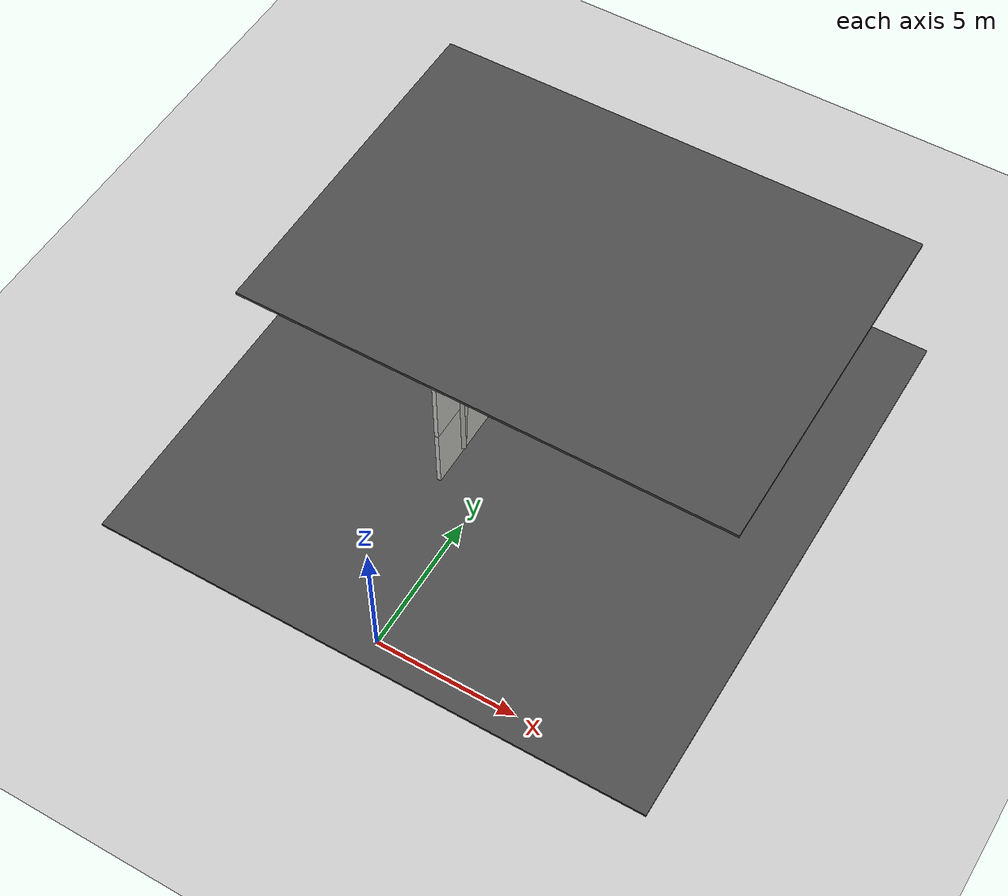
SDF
<sdf version="1.6">
 <world name="default">
  <model name="ground_plane">
   <static>1</static>
   <link name="link">
    <collision name="collision">
     <geometry><plane><normal>0 0 1</normal><size>100 100</size></plane></geometry>
     <surface>
      <contact><collide_bitmask>65535</collide_bitmask></contact>
      <friction><ode><mu>100</mu><mu2>50</mu2></ode></friction>
     </surface>
    </collision>
    <visual name="visual">
     <cast_shadows>0</cast_shadows>
     <geometry><plane><normal>0 0 1</normal><size>100 100</size></plane></geometry>
     <material>
      <script><uri>file://media/materials/scripts/gazebo.material</uri><name>Gazebo/Grey</name></script>
     </material>
    </visual>
   </link>
  </model>
  <model name="asphalt_plane">
   <static>1</static>
   <link name="link">
    <collision name="collision"><geometry><box><size>18.0246 12.9845 0.1</size></box></geometry></collision>
    <visual name="visual">
     <cast_shadows>0</cast_shadows>
     <geometry><box><size>18.0246 12.9845 0.1</size></box></geometry>
     <material>
      <script>
       <uri>model://asphalt_plane/materials/scripts</uri>
       <uri>model://asphalt_plane/materials/textures</uri>
       <name>vrc/asphalt</name>
      </script>
     </material>
    </visual>
   </link>
   <pose>0.009253 12.617 5.05625 0 -0 0</pose>
  </model>
  <model name="Indoor_Scenario1">
   <pose>0.016123 12.6195 0 0 -0 0</pose>
   <link name="Wall_10">
    <collision name="Wall_10_Collision">
     <geometry><box><size>4.25 0.15 2.5</size></box></geometry>
     <pose>0 0 1.25 0 -0 0</pose>
    </collision>
    <visual name="Wall_10_Visual">
     <pose>0 0 1.25 0 -0 0</pose>
     <geometry><box><size>4.25 0.15 2.5</size></box></geometry>
     <material>
      <script><uri>file://media/materials/scripts/gazebo.material</uri><name>Gazebo/CeilingTiled</name></script>
      <ambient>0.647059 0.505882 0.309804 1</ambient>
     </material>
     <meta><layer>0</layer></meta>
    </visual>
    <pose>-1.575 -4.375 0 0 -0 1.5708</pose>
   </link>
   <link name="Wall_63">
    <collision name="Wall_63_Collision">
     <geometry><box><size>4.25 0.15 2.5</size></box></geometry>
     <pose>0 0 1.25 0 -0 0</pose>
    </collision>
    <visual name="Wall_63_Visual">
     <pose>0 0 1.25 0 -0 0</pose>
     <geometry><box><size>4.25 0.15 2.5</size></box></geometry>
     <material>
      <script><uri>file://media/materials/scripts/gazebo.material</uri><name>Gazebo/CeilingTiled</name></script>
      <ambient>1 1 1 1</ambient>
     </material>
     <meta><layer>1</layer></meta>
    </visual>
    <pose>-1.575 -4.375 2.5 0 -0 1.5708</pose>
   </link>
   <link name="Wall_89">
    <collision name="Wall_89_Collision">
     <geometry><box><size>2 0.15 2.5</size></box></geometry>
     <pose>0 0 1.25 0 -0 0</pose>
    </collision>
    <visual name="Wall_89_Visual">
     <pose>0 0 1.25 0 -0 0</pose>
     <geometry><box><size>2 0.15 2.5</size></box></geometry>
     <material>
      <script><uri>file://media/materials/scripts/gazebo.material</uri><name>Gazebo/CeilingTiled</name></script>
      <ambient>1 1 1 1</ambient>
     </material>
     <meta><layer>1</layer></meta>
    </visual>
    <pose>-1.08545 -5.56938 2.5 0 -0 -1.0472</pose>
   </link>
   <static>1</static>
  </model>
  <model name="asphalt_plane_0">
   <static>1</static>
   <link name="link">
    <collision name="collision"><geometry><box><size>20 20 0.1</size></box></geometry></collision>
    <visual name="visual">
     <cast_shadows>0</cast_shadows>
     <geometry><box><size>20 20 0.1</size></box></geometry>
     <material>
      <script>
       <uri>model://asphalt_plane/materials/scripts</uri>
       <uri>model://asphalt_plane/materials/textures</uri>
       <name>vrc/asphalt</name>
      </script>
     </material>
    </visual>
   </link>
   <pose>-0.003889 9.12511 0 0 -0 0</pose>
  </model>
  <model name="marker14_box">
   <link name="marker">
    <inertial>
     <mass>0.1</mass>
     <inertia><ixx>0</ixx><ixy>0</ixy><ixz>0</ixz><iyy>0</iyy><iyz>0</iyz><izz>0</izz></inertia>
    </inertial>
    <self_collide>1</self_collide>
    <pose>0 0 0.25 0 -0 0</pose>
    <visual name="visual">
     <geometry><box><size>1 0.001 1</size></box></geometry>
     <material>
      <script>
       <uri>/root/model_editor_models/marker14/material/scripts</uri>
       <uri>/root/model_editor_models/marker14/material/textures</uri>
       <name>Aruco/marker14</name>
      </script>
      <shader type="pixel"><normal_map>__default__</normal_map></shader>
      <emissive>0 0 0 1</emissive>
      <ambient>1 1 1 1</ambient>
      <diffuse>1 1 1 1</diffuse>
      <specular>0 0 0 1</specular>
     </material>
    </visual>
    <collision name="collision">
     <geometry><box><size>1 0.001 1</size></box></geometry>
     <surface>
      <friction>
       <ode><mu>1</mu><mu2>1</mu2><fdir1>0 0 0</fdir1><slip1>0</slip1><slip2>0</slip2></ode>
       <torsional>
        <coefficient>1</coefficient>
        <patch_radius>0</patch_radius>
        <surface_radius>0</surface_radius>
        <use_patch_radius>1</use_patch_radius>
        <ode><slip>0</slip></ode>
       </torsional>
      </friction>
      <bounce><restitution_coefficient>0</restitution_coefficient><threshold>1e+06</threshold></bounce>
      <contact>
       <collide_without_contact>0</collide_without_contact>
       <collide_without_contact_bitmask>1</collide_without_contact_bitmask>
       <collide_bitmask>1</collide_bitmask>
       <ode>
        <soft_cfm>0</soft_cfm>
        <soft_erp>0.2</soft_erp>
        <kp>1e+13</kp>
        <kd>1</kd>
        <max_vel>0.01</max_vel>
        <min_depth>0</min_depth>
       </ode>
       <bullet>
        <split_impulse>1</split_impulse>
        <split_impulse_penetration_threshold>-0.01</split_impulse_penetration_threshold>
        <soft_cfm>0</soft_cfm>
        <soft_erp>0.2</soft_erp>
        <kp>1e+13</kp>
        <kd>1</kd>
       </bullet>
      </contact>
     </surface>
    </collision>
   </link>
   <link name="link_1">
    <inertial>
     <mass>1</mass>
     <inertia>
      <ixx>0.166667</ixx>
      <ixy>0</ixy>
      <ixz>0</ixz>
      <iyy>0.166667</iyy>
      <iyz>0</iyz>
      <izz>0.166667</izz>
     </inertia>
    </inertial>
    <pose>0 0.11 0.25 0 -0 0</pose>
    <visual name="visual">
     <geometry><box><size>1 0.2 1</size></box></geometry>
     <material>
      <lighting>1</lighting>
      <script><uri>file://media/materials/scripts/gazebo.material</uri><name>Gazebo/Grey</name></script>
      <shader type="pixel"><normal_map>__default__</normal_map></shader>
      <emissive>0 0 0 1</emissive>
      <ambient>0.3 0.3 0.3 1</ambient>
      <diffuse>0.7 0.7 0.7 1</diffuse>
      <specular>0.01 0.01 0.01 1</specular>
     </material>
    </visual>
    <collision name="collision">
     <geometry><box><size>1 0.2 1</size></box></geometry>
     <surface>
      <friction>
       <ode><mu>1</mu><mu2>1</mu2><fdir1>0 0 0</fdir1><slip1>0</slip1><slip2>0</slip2></ode>
       <torsional>
        <coefficient>1</coefficient>
        <patch_radius>0</patch_radius>
        <surface_radius>0</surface_radius>
        <use_patch_radius>1</use_patch_radius>
        <ode><slip>0</slip></ode>
       </torsional>
      </friction>
      <bounce><restitution_coefficient>0</restitution_coefficient><threshold>1e+06</threshold></bounce>
      <contact>
       <collide_without_contact>0</collide_without_contact>
       <collide_without_contact_bitmask>1</collide_without_contact_bitmask>
       <collide_bitmask>1</collide_bitmask>
       <ode>
        <soft_cfm>0</soft_cfm>
        <soft_erp>0.2</soft_erp>
        <kp>1e+13</kp>
        <kd>1</kd>
        <max_vel>0.01</max_vel>
        <min_depth>0</min_depth>
       </ode>
       <bullet>
        <split_impulse>1</split_impulse>
        <split_impulse_penetration_threshold>-0.01</split_impulse_penetration_threshold>
        <soft_cfm>0</soft_cfm>
        <soft_erp>0.2</soft_erp>
        <kp>1e+13</kp>
        <kd>1</kd>
       </bullet>
      </contact>
     </surface>
    </collision>
   </link>
   <joint name="link_1_JOINT_3" type="fixed">
    <parent>link_1</parent>
    <child>marker</child>
    <physics>
     <ode><limit><cfm>0</cfm><erp>0.2</erp></limit><suspension><cfm>0</cfm><erp>0.2</erp></suspension></ode>
    </physics>
   </joint>
   <static>0</static>
   <pose>-1.91097 9.49835 0.3 0 0 -1.55554</pose>
  </model>
 </world>
</sdf>
